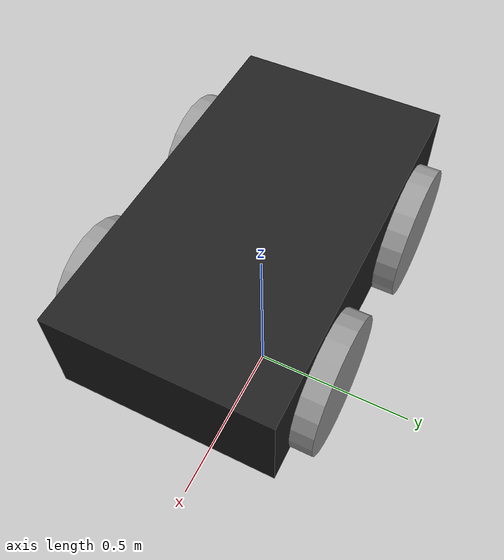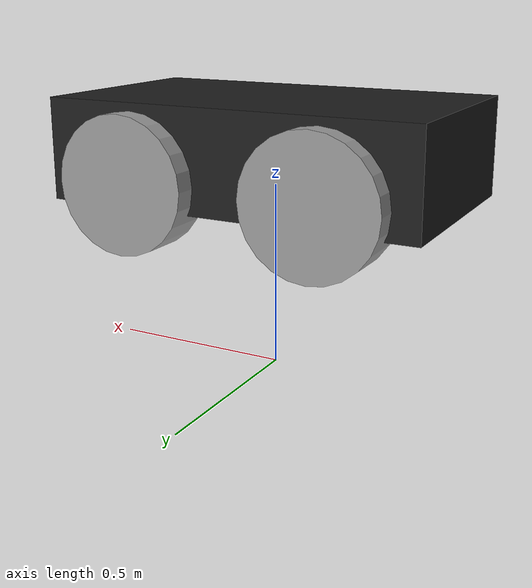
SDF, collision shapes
<?xml version="1.0" ?>
<sdf version="1.5">
  <model name="husky">
    <pose>0 0 .5 0 0 0</pose>
    <!-- Main Chassis -->
    <link name="base_link">
      <!-- Physics -->
      <collision name="collision">
        <pose>0 0 0.1 0 0 0</pose>
        <geometry>
          <box>
            <size>1.0074 0.5709 0.2675</size>
          </box>
        </geometry>
      </collision>
      <inertial>
        <mass>33.855</mass>
        <pose>-0.0856132 -0.000839955 0.238145 0 0 0</pose>
        <inertia>
          <ixx>2.2343</ixx>
          <ixy>-0.023642</ixy>
          <ixz>0.275174</ixz>
          <iyy>3.42518</iyy>
          <iyz>0.00239624</iyz>
          <izz>2.1241</izz>
        </inertia>
      </inertial>
      <!-- Visual -->
      <!-- Base frame -->
      <visual name="base">
        <pose>0 0 0 0 0 0</pose>
        <geometry>
          <mesh>
            <uri>model://husky/meshes/base_link.stl</uri>
          </mesh>
        </geometry>
        <material>
          <script>
            <uri>model://husky/meshes/base_link.stl</uri>
            <name>Gazebo/FlatBlack</name>
          </script>
        </material>
      </visual>
      <!-- Top Plate -->
      <visual name="top_plate">
        <pose>0 0 0 0 0 0</pose>
        <geometry>
          <mesh>
            <uri>model://husky/meshes/top_plate.stl</uri>
          </mesh>
        </geometry>
        <material>
          <script>
            <uri>model://husky/meshes/top_plate.stl</uri>
            <name>Gazebo/Yellow</name>
          </script>
        </material>
      </visual>
      <!-- Front Bumper -->
      <visual name="front_bumper">
        <pose>0.47 0 0.091 0 0 0</pose>
        <geometry>
          <mesh>
            <uri>model://husky/meshes/bumper.stl</uri>
          </mesh>
        </geometry>
        <material>
          <script>
            <uri>model://husky/meshes/bumper.stl</uri>
            <name>Gazebo/FlatBlack</name>
          </script>
        </material>
      </visual>
      <!-- Rear Bumper -->
      <visual name="rear_bumper">
        <pose>-0.47 0 0.091 0 0 3.141</pose>
        <geometry>
          <mesh>
            <uri>model://husky/meshes/bumper.stl</uri>
          </mesh>
        </geometry>
        <material>
          <script>
            <uri>model://husky/meshes/bumper.stl</uri>
            <name>Gazebo/FlatBlack</name>
          </script>
        </material>
      </visual>
      <!-- User Rail -->
      <visual name="user_rail">
        <pose>0.272 0 0.245 0 0 0</pose>
        <geometry>
          <mesh>
            <uri>model://husky/meshes/user_rail.stl</uri>
          </mesh>
        </geometry>
        <material>
          <script>
            <uri>model://husky/meshes/user_rail.stl</uri>
            <name>Gazebo/Grey</name>
          </script>
        </material>
      </visual>
    </link>
    <!-- Back Left Wheel -->
    <link name="back_left_wheel">
      <pose>-0.256 0.285475 0.035 0 0 0</pose>
      <inertial>
        <mass>2.6357</mass>
        <pose>0 0 0 0 0 0</pose>
        <inertia>
          <ixx>0.0246688</ixx>
          <ixy>0</ixy>
          <ixz>0</ixz>
          <iyy>0.0246688</iyy>
          <iyz>0</iyz>
          <izz>0.0441058</izz>
        </inertia>
      </inertial>
      <collision name="back_left_wheel_collision">
        <pose>0 0 0 -1.5707 0 0</pose>
        <geometry>
          <cylinder>
            <radius>0.17775</radius>
            <length>0.1143</length>
          </cylinder>
        </geometry>
        <surface>
          <friction>
            <ode>
              <mu>100000.0</mu>
              <mu2>100000.0</mu2>
              <slip1>0.0</slip1>
              <slip2>0.0</slip2>
            </ode>
          </friction>
        </surface>
      </collision>
      <visual name="back_left_wheel">
        <pose>0 0 0 -3.14159 0 0</pose>
        <geometry>
          <mesh>
            <uri>model://husky/meshes/wheel.stl</uri>
          </mesh>
        </geometry>
        <material>
          <script>
            <uri>model://husky/meshes/wheel.stl</uri>
            <name>Gazebo/Grey</name>
          </script>
        </material>
      </visual>
    </link>
    <joint name="back_left_joint" type="revolute">
      <parent>base_link</parent>
      <child>back_left_wheel</child>
      <axis>
        <xyz>0 1 0</xyz>
        <use_parent_model_frame>true</use_parent_model_frame>
      </axis>
      <physics>
        <ode>
          <limit>
            <cfm>0.000000</cfm>
            <erp>0.900000</erp>
          </limit>
        </ode>
      </physics>
    </joint>
    <!-- Back Right Wheel -->
    <link name="back_right_wheel">
      <pose>-0.256 -0.285475 0.035 0 0 0</pose>
      <inertial>
        <mass>2.6357</mass>
        <pose>0 0 0 0 0 0</pose>
        <inertia>
          <ixx>0.0246688</ixx>
          <ixy>0</ixy>
          <ixz>0</ixz>
          <iyy>0.0246688</iyy>
          <iyz>0</iyz>
          <izz>0.0441058</izz>
        </inertia>
      </inertial>
      <collision name="back_right_wheel_collision">
        <pose>0 0 0 -1.5707 0 0</pose>
        <geometry>
          <cylinder>
            <radius>0.17775</radius>
            <length>0.1143</length>
          </cylinder>
        </geometry>
        <surface>
          <friction>
            <ode>
              <mu>100000.0</mu>
              <mu2>100000.0</mu2>
              <slip1>0.0</slip1>
              <slip2>0.0</slip2>
            </ode>
          </friction>
        </surface>
      </collision>
      <visual name="back_right_wheel">
        <pose>0 0 0 -3.14159 0 0</pose>
        <geometry>
          <mesh>
            <uri>model://husky/meshes/wheel.stl</uri>
          </mesh>
        </geometry>
        <material>
          <script>
            <uri>model://husky/meshes/wheel.stl</uri>
            <name>Gazebo/Grey</name>
          </script>
        </material>
      </visual>
    </link>
    <joint name="back_right_joint" type="revolute">
      <parent>base_link</parent>
      <child>back_right_wheel</child>
      <axis>
        <xyz>0 1 0</xyz>
        <use_parent_model_frame>true</use_parent_model_frame>
      </axis>
      <physics>
        <ode>
          <limit>
            <cfm>0.000000</cfm>
            <erp>0.900000</erp>
          </limit>
        </ode>
      </physics>
    </joint>
    <!-- Front Left Wheel -->
    <link name="front_left_wheel">
      <pose>0.256 0.285475 0.035 0 0 0</pose>
      <inertial>
        <mass>2.6357</mass>
        <pose>0 0 0 0 0 0</pose>
        <inertia>
          <ixx>0.0246688</ixx>
          <ixy>0</ixy>
          <ixz>0</ixz>
          <iyy>0.0246688</iyy>
          <iyz>0</iyz>
          <izz>0.0441058</izz>
        </inertia>
      </inertial>
      <collision name="front_left_wheel_collision">
        <pose>0 0 0 -1.5707 0 0</pose>
        <geometry>
          <cylinder>
            <radius>0.17775</radius>
            <length>0.1143</length>
          </cylinder>
        </geometry>
        <surface>
          <friction>
            <ode>
              <mu>100000.0</mu>
              <mu2>100000.0</mu2>
              <slip1>0.0</slip1>
              <slip2>0.0</slip2>
            </ode>
          </friction>
        </surface>
      </collision>
      <visual name="front_left_wheel">
        <pose>0 0 0 -3.14159 0 0</pose>
        <geometry>
          <mesh>
            <uri>model://husky/meshes/wheel.stl</uri>
          </mesh>
        </geometry>
        <material>
          <script>
            <uri>model://husky/meshes/wheel.stl</uri>
            <name>Gazebo/Grey</name>
          </script>
        </material>
      </visual>
    </link>
    <joint name="front_left_joint" type="revolute">
      <parent>base_link</parent>
      <child>front_left_wheel</child>
      <axis>
        <xyz>0 1 0</xyz>
        <use_parent_model_frame>true</use_parent_model_frame>
      </axis>
      <physics>
        <ode>
          <limit>
            <cfm>0.000000</cfm>
            <erp>0.900000</erp>
          </limit>
        </ode>
      </physics>
    </joint>
    <!-- Front Right Wheel -->
    <link name="front_right_wheel">
      <pose>0.256 -0.285475 0.035 0 0 0</pose>
      <inertial>
        <mass>2.6357</mass>
        <pose>0 0 0 0 0 0</pose>
        <inertia>
          <ixx>0.0246688</ixx>
          <ixy>0</ixy>
          <ixz>0</ixz>
          <iyy>0.0246688</iyy>
          <iyz>0</iyz>
          <izz>0.0441058</izz>
        </inertia>
      </inertial>
      <collision name="front_right_wheel_collision">
        <pose>0 0 0 -1.5707 0 0</pose>
        <geometry>
          <cylinder>
            <radius>0.17775</radius>
            <length>0.1143</length>
          </cylinder>
        </geometry>
        <surface>
          <friction>
            <ode>
              <mu>100000.0</mu>
              <mu2>100000.0</mu2>
              <slip1>0.0</slip1>
              <slip2>0.0</slip2>
            </ode>
          </friction>
        </surface>
      </collision>
      <visual name="front_right_wheel">
        <pose>0 0 0 -3.14159 0 0</pose>
        <geometry>
          <mesh>
            <uri>model://husky/meshes/wheel.stl</uri>
          </mesh>
        </geometry>
        <material>
          <script>
            <uri>model://husky/meshes/wheel.stl</uri>
            <name>Gazebo/Grey</name>
          </script>
        </material>
      </visual>
    </link>
    <joint name="front_right_joint" type="revolute">
      <parent>base_link</parent>
      <child>front_right_wheel</child>
      <axis>
        <xyz>0 1 0</xyz>
        <use_parent_model_frame>true</use_parent_model_frame>
      </axis>
      <physics>
        <ode>
          <limit>
            <cfm>0.000000</cfm>
            <erp>0.900000</erp>
          </limit>
        </ode>
      </physics>
    </joint>
    <plugin name="husky_diff_controller" filename="libhusky_gazebo_plugins.so">
      <alwaysOn>true</alwaysOn>
      <updateRate>100.0</updateRate>
      <backLeftJoint>back_left_joint</backLeftJoint>
      <backRightJoint>back_right_joint</backRightJoint>
      <frontLeftJoint>front_left_joint</frontLeftJoint>
      <frontRightJoint>front_right_joint</frontRightJoint>
      <wheelSeparation>0.5709</wheelSeparation>
      <wheelDiameter>0.3555</wheelDiameter>
      <torque>35</torque>
    </plugin>
  </model>
</sdf>
